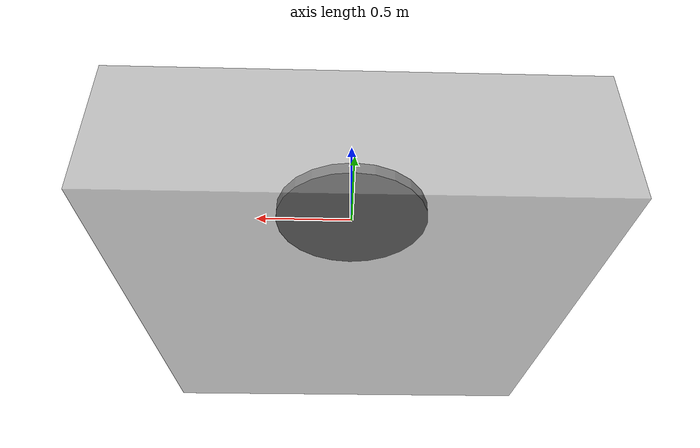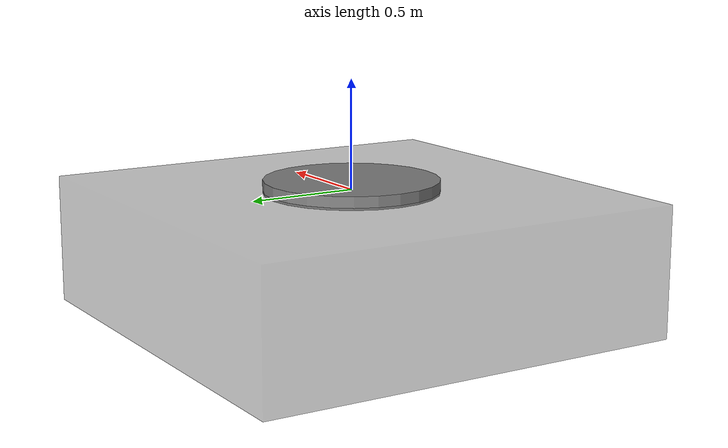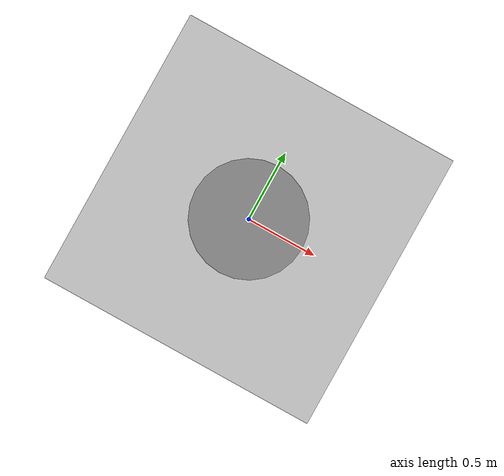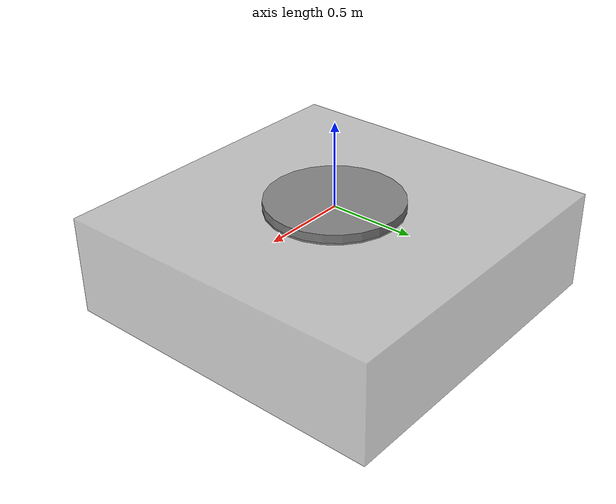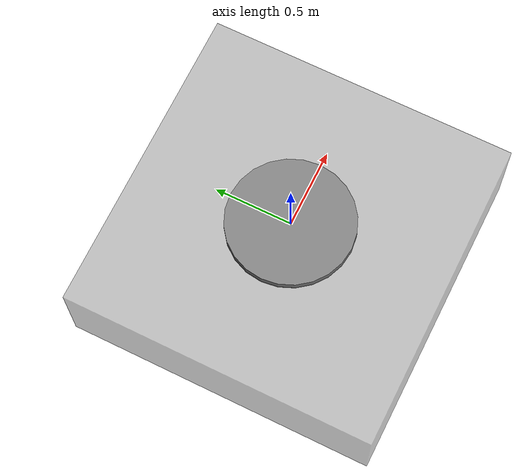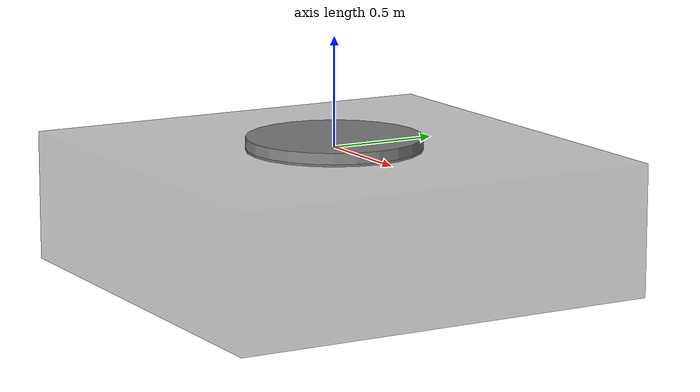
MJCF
<mujoco>
  <option>
    <flag multiccd="enable"/>
  </option>

  <visual>
    <quality shadowsize="8192"/>
    <scale forcewidth="0.01" contactwidth="0.05" contactheight="0.05"/>
    <map force="0.1"/>
  </visual>

  <worldbody>
    <light pos="0 0 1"/>
    <geom type="box" size="1 1 .3" pos="0 0 -.3" rgba=".5 .5 .5 .5"/>
    <body pos="0 0 .02">
      <freejoint/>
      <geom type="cylinder" size=".4 .03"/>
    </body>
  </worldbody>
</mujoco>
